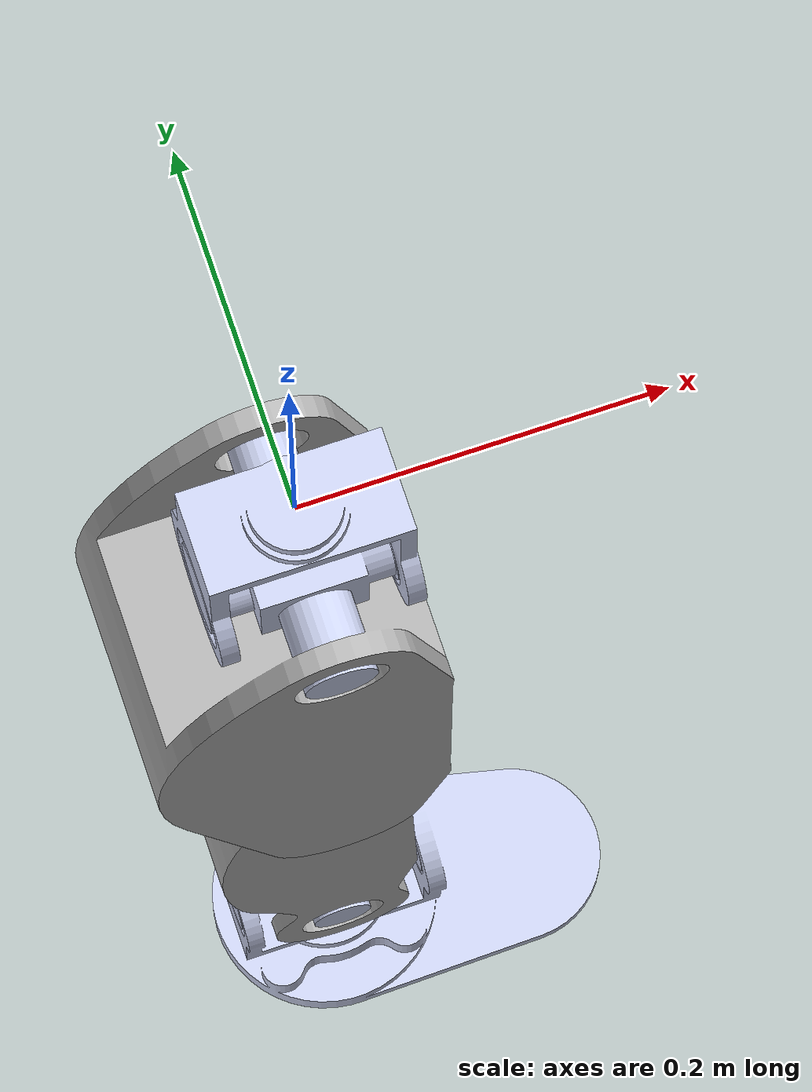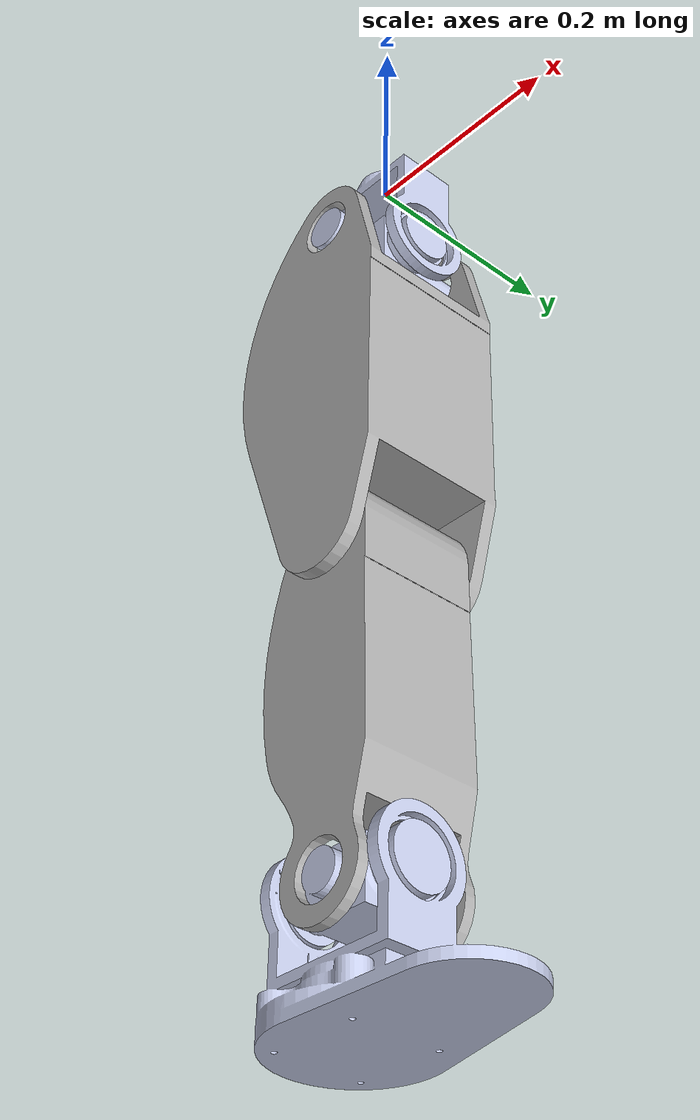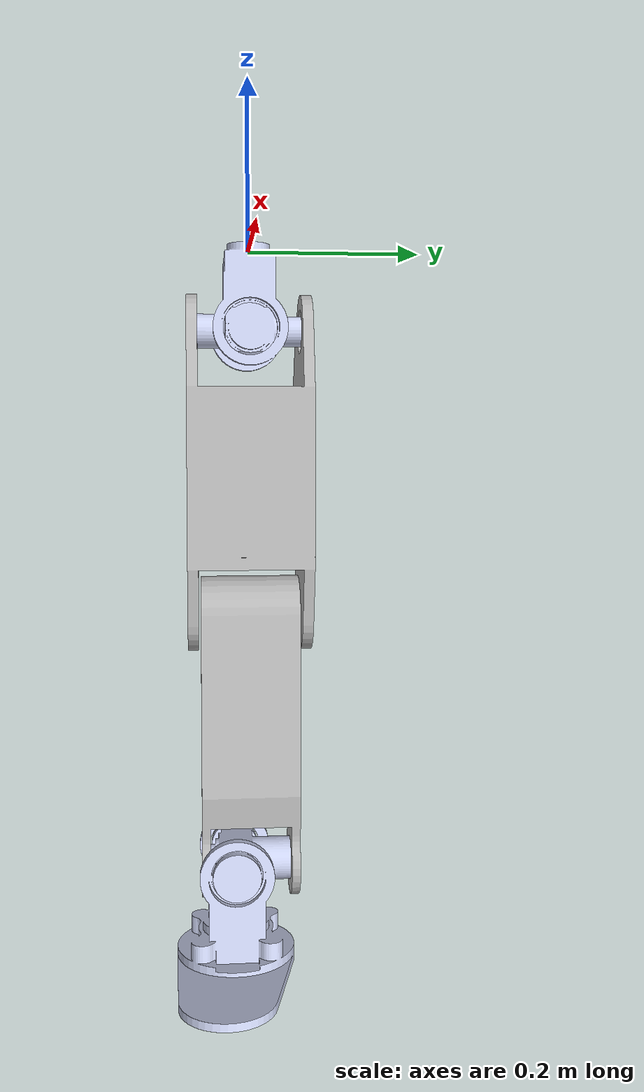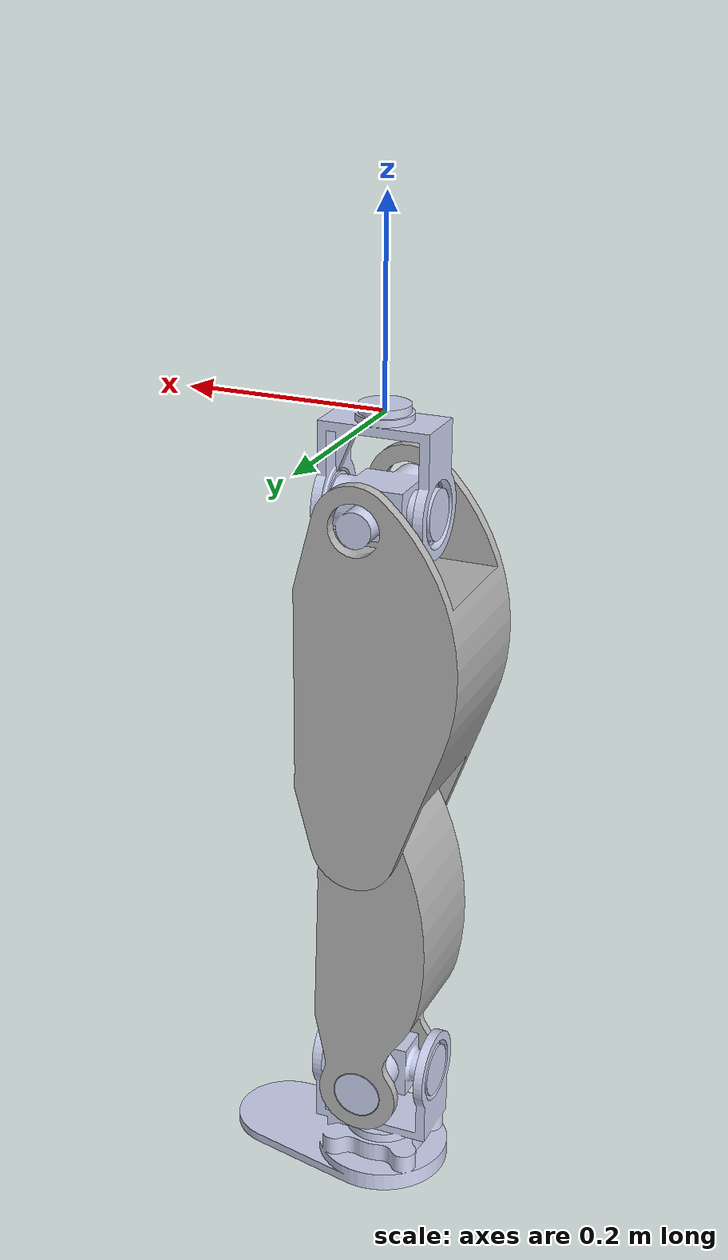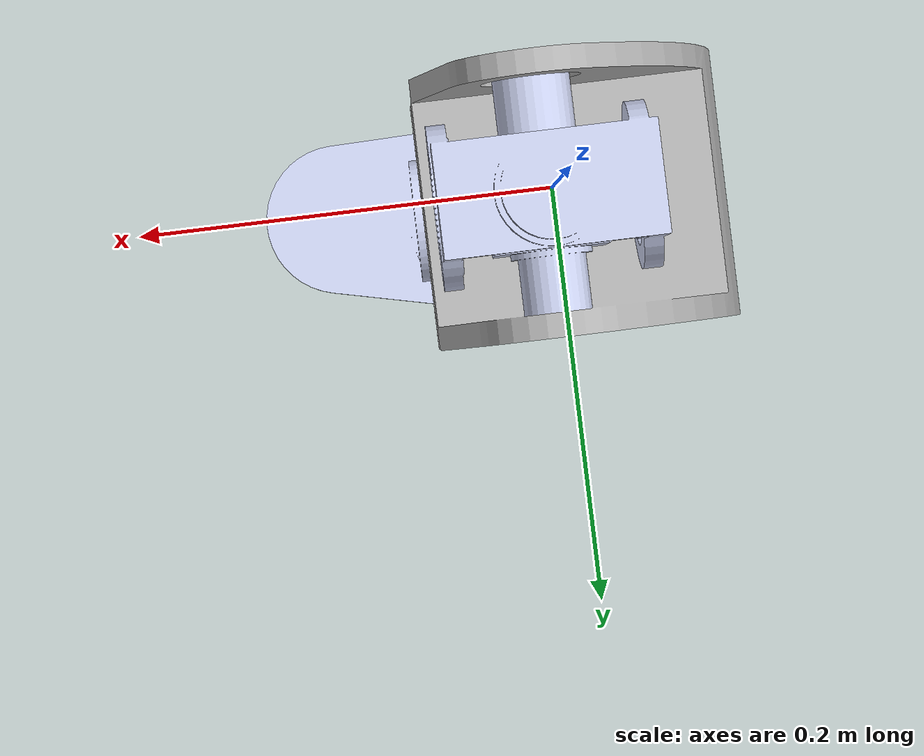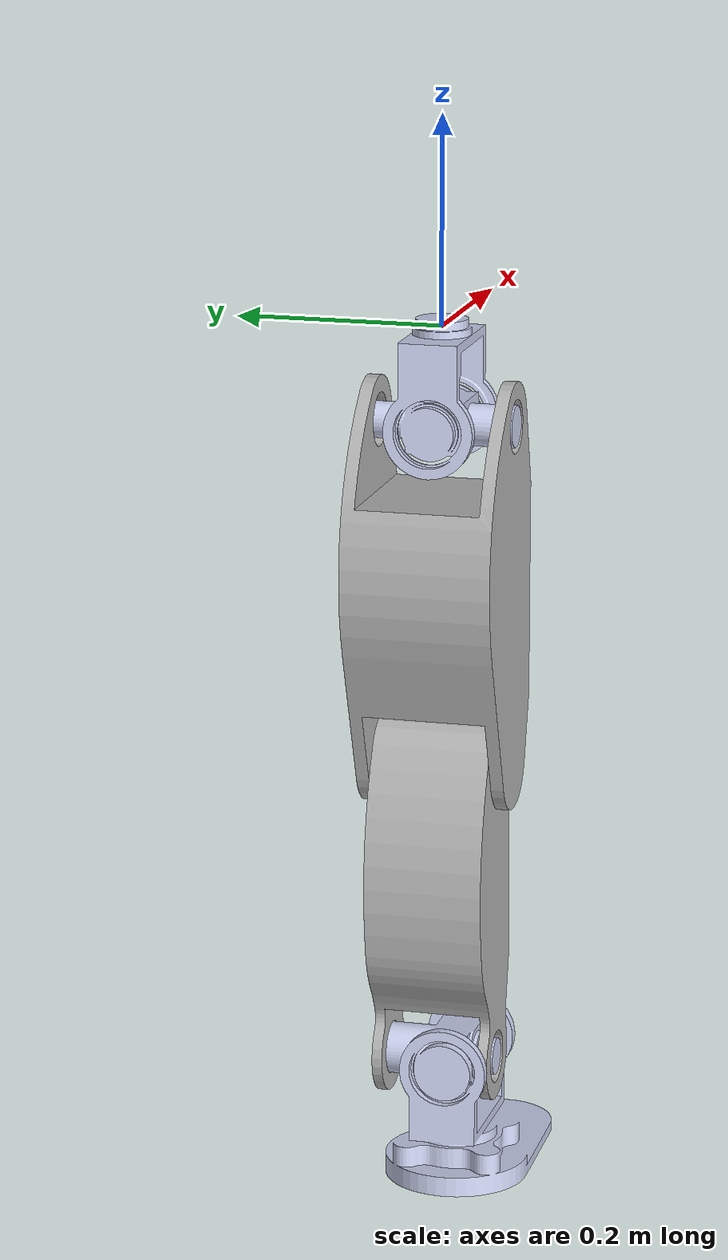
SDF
<?xml version='1.0'?>
<sdf version='1.7'>
  <model name='TEO_leftLeg'>

    <link name='AxialLeftHip_link_adapter'/>

    <link name='AxialLeftHip_link'>
      <pose>0 0 0 0 -0 0</pose>
      <inertial>
        <pose>0.000089 -0.000389 -0.065985 0 -0 0</pose>
        <mass>0.84945</mass>
        <inertia>
          <ixx>0.001564202</ixx>
          <ixy>0.0000025</ixy>
          <ixz>0</ixz>
          <iyy>0.002645089</iyy>
          <iyz>0</iyz>
          <izz>0.001706349</izz>
        </inertia>
      </inertial>
      <visual name='AxialLeftHip_visual'>
        <geometry>
          <mesh>
            <uri>model://teo/meshes/visual/AxialLeftHip.dae</uri>
          </mesh>
        </geometry>
        <material>
          <ambient>0.792157 0.819608 0.933333 1</ambient>
          <diffuse>0.792157 0.819608 0.933333 1</diffuse>
          <specular>0.633726 0.655686 0.746667 1</specular>
        </material>
      </visual>
      <collision name='AxialLeftHip_collision'>
        <geometry>
          <mesh>
            <uri>model://teo/meshes/collision/AxialLeftHip.stl</uri>
          </mesh>
        </geometry>
      </collision>
    </link>

    <joint name='AxialLeftHip' type='revolute'>
      <parent>AxialLeftHip_link_adapter</parent>
      <child>AxialLeftHip_link</child>
      <axis>
        <xyz>0 0 1</xyz>
        <limit>
          <lower>-0.49</lower>
          <upper>0.57</upper>
        </limit>
        <dynamics>
          <damping>0.001</damping>
          <friction>0.7</friction>
        </dynamics>
      </axis>
    </joint>

    <link name='SagittalLeftHip_link'>
      <pose>0 0 -0.092 0 -0 0</pose>
      <inertial>
        <pose>-0.00011 -0.000988 0.000214 0 -0 0</pose>
        <mass>1.45459</mass>
        <inertia>
          <ixx>0.001545815</ixx>
          <ixy>-0.00000297</ixy>
          <ixz>-4.07e-09</ixz>
          <iyy>0.00119159</iyy>
          <iyz>9.16e-09</iyz>
          <izz>0.002270482</izz>
        </inertia>
      </inertial>
      <visual name='SagittalLeftHip_visual'>
        <geometry>
          <mesh>
            <uri>model://teo/meshes/visual/SagittalLeftHip.dae</uri>
          </mesh>
        </geometry>
        <material>
          <ambient>0.792157 0.819608 0.933333 1</ambient>
          <diffuse>0.792157 0.819608 0.933333 1</diffuse>
          <specular>0.633726 0.655686 0.746667 1</specular>
        </material>
      </visual>
      <collision name='SagittalLeftHip_collision'>
        <geometry>
          <mesh>
            <uri>model://teo/meshes/collision/SagittalLeftHip.stl</uri>
          </mesh>
        </geometry>
      </collision>
    </link>

    <joint name='SagittalLeftHip' type='revolute'>
      <parent>AxialLeftHip_link</parent>
      <child>SagittalLeftHip_link</child>
      <axis>
        <xyz>1 0 0</xyz>
        <limit>
          <lower>-0.22</lower>
          <upper>0.25</upper>
        </limit>
        <dynamics>
          <damping>0.001</damping>
          <friction>0.7</friction>
        </dynamics>
      </axis>
    </joint>

    <link name='FrontalLeftHip_link'>
      <pose>0 0 -0.092 0 -0 0</pose>
      <inertial>
        <pose>-0.010862 -0.000006 -0.161205 0 -0 0</pose>
        <mass>1.89152</mass>
        <inertia>
          <ixx>0.015077735</ixx>
          <ixy>0</ixy>
          <ixz>-0.000442074</ixz>
          <iyy>0.015112044</iyy>
          <iyz>0</iyz>
          <izz>0.00747346</izz>
        </inertia>
      </inertial>
      <visual name='FrontalLeftHip_visual'>
        <geometry>
          <mesh>
            <uri>model://teo/meshes/visual/FrontalLeftHip.dae</uri>
          </mesh>
        </geometry>
        <material>
          <ambient>1 1 1 1</ambient>
          <diffuse>0.7 0.7 0.7 1</diffuse>
          <specular>0.2 0.2 0.2 1</specular>
        </material>
      </visual>
      <collision name='FrontalLeftHip_collision'>
        <geometry>
          <mesh>
            <uri>model://teo/meshes/collision/FrontalLeftHip.stl</uri>
          </mesh>
        </geometry>
      </collision>
    </link>

    <joint name='FrontalLeftHip' type='revolute'>
      <parent>SagittalLeftHip_link</parent>
      <child>FrontalLeftHip_link</child>
      <axis>
        <xyz>0 1 0</xyz>
        <limit>
          <lower>-0.55</lower>
          <upper>0.74</upper>
        </limit>
        <dynamics>
          <damping>0.001</damping>
          <friction>0.7</friction>
        </dynamics>
      </axis>
    </joint>

    <link name='FrontalLeftKnee_link'>
      <pose>0 0 -0.422 0 -0 0</pose>
      <inertial>
        <pose>-0.006614 -0.000411 -0.146413 0 -0 0</pose>
        <mass>1.94824</mass>
        <inertia>
          <ixx>0.02186171</ixx>
          <ixy>0</ixy>
          <ixz>0.00000316</ixz>
          <iyy>0.021411109</iyy>
          <iyz>0</iyz>
          <izz>0.003843636</izz>
        </inertia>
      </inertial>
      <visual name='FrontalLeftKnee_visual'>
        <geometry>
          <mesh>
            <uri>model://teo/meshes/visual/FrontalLeftKnee.dae</uri>
          </mesh>
        </geometry>
        <material>
          <ambient>1 1 1 1</ambient>
          <diffuse>0.7 0.7 0.7 1</diffuse>
          <specular>0.2 0.2 0.2 1</specular>
        </material>
      </visual>
      <collision name='FrontalLeftKnee_collision'>
        <geometry>
          <mesh>
            <uri>model://teo/meshes/collision/FrontalLeftKnee.stl</uri>
          </mesh>
        </geometry>
      </collision>
    </link>

    <joint name='FrontalLeftKnee' type='revolute'>
      <parent>FrontalLeftHip_link</parent>
      <child>FrontalLeftKnee_link</child>
      <axis>
        <xyz>0 1 0</xyz>
        <limit>
          <lower>-1.07</lower>
          <upper>1.44</upper>
        </limit>
        <dynamics>
          <damping>0.001</damping>
          <friction>0.7</friction>
        </dynamics>
      </axis>
    </joint>

    <link name='FrontalLeftAnkle_link'>
      <pose>0 -0.0175 -0.722 0 -0 0</pose>
      <inertial>
        <pose>0.001999 0.013793 0.000035 0 -0 0</pose>
        <mass>1.50359</mass>
        <inertia>
          <ixx>0.001392287</ixx>
          <ixy>-0.0000121</ixy>
          <ixz>1e-11</ixz>
          <iyy>0.001590045</iyy>
          <iyz>1e-11</iyz>
          <izz>0.00241606</izz>
        </inertia>
      </inertial>
      <visual name='FrontalLeftAnkle_visual'>
        <geometry>
          <mesh>
            <uri>model://teo/meshes/visual/FrontalLeftAnkle.dae</uri>
          </mesh>
        </geometry>
        <material>
          <ambient>0.792157 0.819608 0.933333 1</ambient>
          <diffuse>0.792157 0.819608 0.933333 1</diffuse>
          <specular>0.633726 0.655686 0.746667 1</specular>
        </material>
      </visual>
      <collision name='FrontalLeftAnkle_collision'>
        <geometry>
          <mesh>
            <uri>model://teo/meshes/collision/FrontalLeftAnkle.stl</uri>
          </mesh>
        </geometry>
      </collision>
    </link>

    <joint name='FrontalLeftAnkle' type='revolute'>
      <parent>FrontalLeftKnee_link</parent>
      <child>FrontalLeftAnkle_link</child>
      <axis>
        <xyz>0 1 0</xyz>
        <limit>
          <lower>-0.4</lower>
          <upper>0.44</upper>
        </limit>
        <dynamics>
          <damping>0.001</damping>
          <friction>0.7</friction>
        </dynamics>
      </axis>
    </joint>

    <link name='SagittalLeftAnkle_link'>
      <pose>0 -0.0175 -0.722 0 -0 0</pose>
      <inertial>
        <pose>0.010136 -0.000799 -0.0669 0 -0 0</pose>
        <mass>2.1334</mass>
        <inertia>
          <ixx>0.007763728</ixx>
          <ixy>-0.000524258</ixy>
          <ixz>-0.001424772</ixz>
          <iyy>0.014591641</iyy>
          <iyz>0.000173925</iyz>
          <izz>0.013164253</izz>
        </inertia>
      </inertial>
      <visual name='SagittalLeftAnkle_visual'>
        <geometry>
          <mesh>
            <uri>model://teo/meshes/visual/SagittalLeftAnkle.dae</uri>
          </mesh>
        </geometry>
        <material>
          <ambient>0.792157 0.819608 0.933333 1</ambient>
          <diffuse>0.792157 0.819608 0.933333 1</diffuse>
          <specular>0.633726 0.655686 0.746667 1</specular>
        </material>
      </visual>
      <collision name='SagittalLeftAnkle_collision'>
        <geometry>
          <mesh>
            <uri>model://teo/meshes/collision/SagittalLeftAnkle.stl</uri>
          </mesh>
        </geometry>
      </collision>
    </link>

    <joint name='SagittalLeftAnkle' type='revolute'>
      <parent>FrontalLeftAnkle_link</parent>
      <child>SagittalLeftAnkle_link</child>
      <axis>
        <xyz>1 0 0</xyz>
        <limit>
          <lower>-0.74</lower>
          <upper>0.35</upper>
        </limit>
        <dynamics>
          <damping>0.001</damping>
          <friction>0.7</friction>
        </dynamics>
      </axis>
    </joint>

    <link name='SagittalLeftFoot_link'>
      <pose>0 -0.0175 -0.722 0 -0 0</pose>
      <inertial>
        <pose>0.010136 -0.000799 -0.0669 0 -0 0</pose>
        <mass>1.0</mass>
        <inertia>
          <ixx>0.007763728</ixx>
          <ixy>-0.000524258</ixy>
          <ixz>-0.001424772</ixz>
          <iyy>0.014591641</iyy>
          <iyz>0.000173925</iyz>
          <izz>0.013164253</izz>
        </inertia>
      </inertial>
      <visual name='SagittalLeftFoot_visual'>
        <geometry>
          <mesh>
            <uri>model://teo/meshes/visual/SagittalLeftFoot.dae</uri>
          </mesh>
        </geometry>
        <material>
          <ambient>0.792157 0.819608 0.933333 1</ambient>
          <diffuse>0.792157 0.819608 0.933333 1</diffuse>
          <specular>0.633726 0.655686 0.746667 1</specular>
        </material>
      </visual>
      <collision name='SagittalLeftFoot_collision'>
        <geometry>
          <mesh>
            <uri>model://teo/meshes/collision/SagittalLeftFoot.stl</uri>
          </mesh>
        </geometry>
        <max_contacts>4</max_contacts>
        <surface>
          <contact>
            <ode>
              <kp>18000000</kp>
              <kd>100</kd>
              <max_vel>100</max_vel>
              <min_depth>0.0001</min_depth>
            </ode>
          </contact>
          <friction>
            <ode/>
          </friction>
        </surface>
      </collision>
    </link>

    <joint name='SagittalLeftFoot' type='fixed'>
      <parent>SagittalLeftAnkle_link</parent>
      <child>SagittalLeftFoot_link</child>
      <pose>0 0 -0.113 3.141593 0 0</pose>
      <sensor name="leftLeg_ft" type="force_torque">
        <always_on>true</always_on>
        <update_rate>200</update_rate>
        <force_torque>
          <frame>sensor</frame>
          <measure_direction>child_to_parent</measure_direction>
        </force_torque>
      </sensor>
    </joint>

    <plugin name='gzyarp::ControlBoard' filename='gz-sim-yarp-controlboard-system'>
      <yarpConfigurationFile>model://teo/conf/gazebo_teo_leftLeg.ini</yarpConfigurationFile>
    </plugin>

    <plugin name='gzyarp::ForceTorque' filename='gz-sim-yarp-forcetorque-system'>
      <yarpConfigurationFile>model://teo/conf/gazebo_teo_leftLeg_ft.ini</yarpConfigurationFile>
    </plugin>

  </model>
</sdf>
